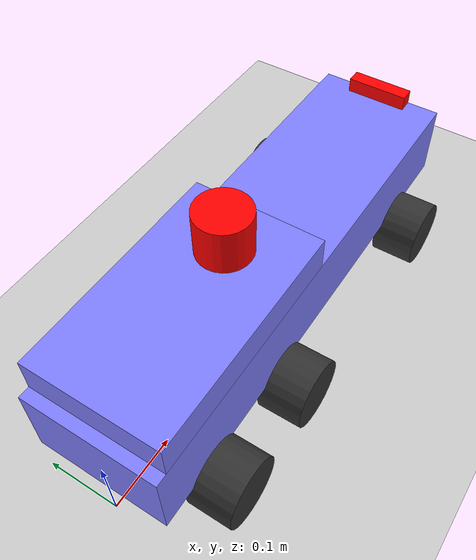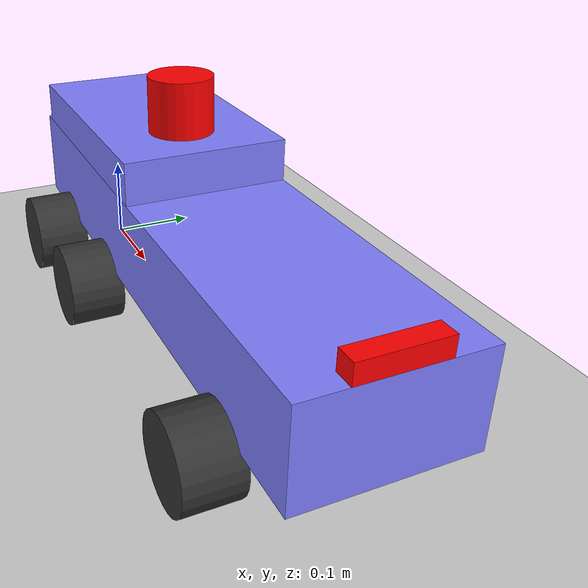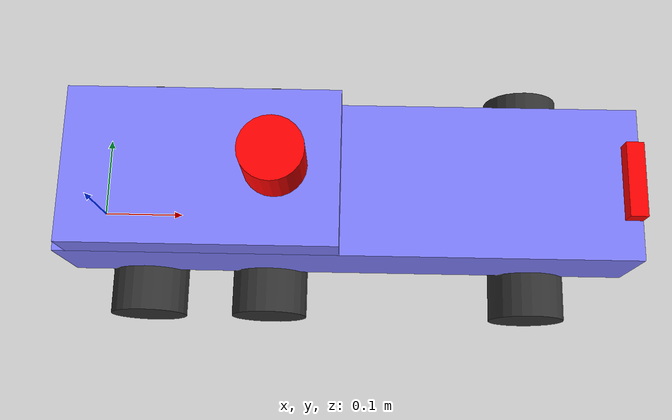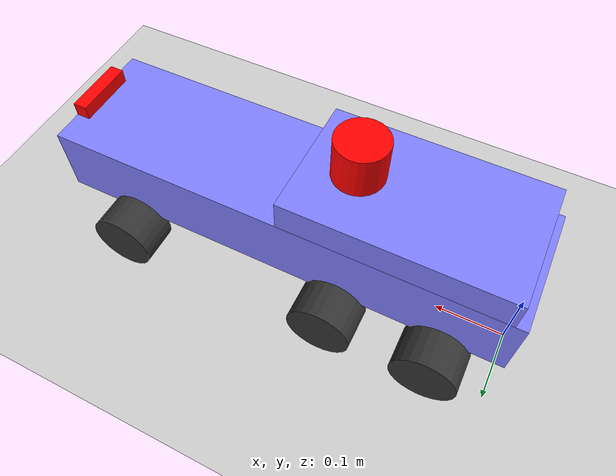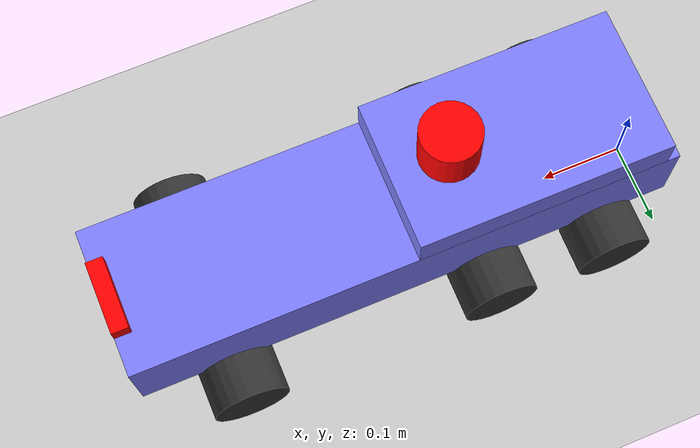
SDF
<sdf version="1.10">
 <world name="ackermann_steering">
  <model name="ground_plane">
   <static>true</static>
   <link name="link">
    <collision name="collision">
     <geometry><plane><normal>0 0 1</normal><size>100 100</size></plane></geometry>
     <surface>
      <friction>
       <ode><mu>50</mu></ode>
       <bullet><friction>1</friction><rolling_friction>0.10000000000000001</rolling_friction></bullet>
      </friction>
     </surface>
    </collision>
    <visual name="visual">
     <geometry><plane><normal>0 0 1</normal><size>100 100</size></plane></geometry>
     <material>
      <ambient>0.800000012 0.800000012 0.800000012 1</ambient>
      <diffuse>0.800000012 0.800000012 0.800000012 1</diffuse>
      <specular>0.800000012 0.800000012 0.800000012 1</specular>
     </material>
    </visual>
    <inertial>
     <mass>1</mass>
     <inertia><ixx>1</ixx><ixy>0</ixy><ixz>0</ixz><iyy>1</iyy><iyz>0</iyz><izz>1</izz></inertia>
    </inertial>
   </link>
  </model>
  <model name="vehicle_blue">
   <pose>0 0 0.13 0 0 0</pose>
   <plugin name="gz::sim::systems::OdometryPublisher" filename="gz-sim-odometry-publisher-system">
    <odom_frame>odom</odom_frame>
    <robot_base_frame>base_footprint</robot_base_frame>
    <odom_topic>/odom</odom_topic>
    <tf_topic>/tf</tf_topic>
    <xyz_offset>0.155 0 0</xyz_offset>
   </plugin>
   <link name="chassis">
    <pose>0.16 0 0 0 0 0</pose>
    <inertial>
     <mass>6000</mass>
     <inertia>
      <ixx>0.126164</ixx>
      <ixy>0</ixy>
      <ixz>0</ixz>
      <iyy>0.41651899999999997</iyy>
      <iyz>0</iyz>
      <izz>0.481014</izz>
     </inertia>
    </inertial>
    <visual name="visual">
     <pose>0.16 0 0 0 0 0</pose>
     <geometry><box><size>0.65000000000000002 0.17499999999999999 0.10000000000000001</size></box></geometry>
     <material><ambient>0.5 0.5 1 1</ambient><diffuse>0.5 0.5 1 1</diffuse><specular>0 0 1 1</specular></material>
    </visual>
    <collision name="collision">
     <pose>0.16 0 0 0 0 0</pose>
     <geometry><box><size>0.65000000000000002 0.17499999999999999 0.10000000000000001</size></box></geometry>
    </collision>
   </link>
   <link name="superstructure_link">
    <pose>0.15999999999999998 -4.4408920985006262e-16 0.072500000000000009 -6.6174449004242214e-24 3.1341007505187209e-25 -1.0369869514467917e-48</pose>
    <inertial>
     <mass>2</mass>
     <inertia>
      <ixx>0.126164</ixx>
      <ixy>0</ixy>
      <ixz>0</ixz>
      <iyy>0.41651899999999997</iyy>
      <iyz>0</iyz>
      <izz>0.481014</izz>
     </inertia>
    </inertial>
    <visual name="visual">
     <geometry><box><size>0.29999999999999999 0.17499999999999999 0.044999999999999998</size></box></geometry>
     <material><ambient>0.5 0.5 1 1</ambient><diffuse>0.5 0.5 1 1</diffuse><specular>0 0 1 1</specular></material>
    </visual>
    <collision name="collision">
     <geometry><box><size>0.29999999999999999 0.17499999999999999 0.044999999999999998</size></box></geometry>
    </collision>
   </link>
   <joint name="superstructure_joint" type="fixed">
    <parent>chassis</parent>
    <child>superstructure_link</child>
    <pose>0 2.9582283945787943e-31 0 0 0 0</pose>
   </joint>
   <link name="rear_left_wheel">
    <pose>0.080000000000000016 0.10999999999999988 -0.072500000000000009 -6.6174308521615763e-24 -5.4487773478196272e-18 1.8028453664010365e-41</pose>
    <inertial>
     <mass>0.20000000000000001</mass>
     <inertia>
      <ixx>0.14583299999999999</ixx>
      <ixy>0</ixy>
      <ixz>0</ixz>
      <iyy>0.14583299999999999</iyy>
      <iyz>0</iyz>
      <izz>0.125</izz>
     </inertia>
    </inertial>
    <visual name="visual">
     <pose>0 0 0 1.5708 0 0</pose>
     <geometry>
      <cylinder><length>0.057500000000000002</length><radius>0.044999999999999998</radius></cylinder>
     </geometry>
     <material>
      <ambient>0.200000003 0.200000003 0.200000003 1</ambient>
      <diffuse>0.200000003 0.200000003 0.200000003 1</diffuse>
      <specular>0.200000003 0.200000003 0.200000003 1</specular>
     </material>
    </visual>
    <collision name="collision">
     <pose>0 0 0 1.5708 0 0</pose>
     <geometry>
      <cylinder><length>0.057500000000000002</length><radius>0.044999999999999998</radius></cylinder>
     </geometry>
     <surface>
      <friction>
       <ode><mu>0.5</mu><mu2>1</mu2><fdir1>0 0 1</fdir1></ode>
       <bullet>
        <friction>0.5</friction>
        <friction2>1</friction2>
        <rolling_friction>0.10000000000000001</rolling_friction>
       </bullet>
      </friction>
     </surface>
    </collision>
   </link>
   <link name="rear_right_wheel">
    <pose>0.080000000000000002 -0.11000000000000054 -0.072500000000000009 -6.6154704950157269e-24 -7.6579661100813126e-16 2.5330524426536642e-39</pose>
    <inertial>
     <mass>0.20000000000000001</mass>
     <inertia>
      <ixx>0.14583299999999999</ixx>
      <ixy>0</ixy>
      <ixz>0</ixz>
      <iyy>0.14583299999999999</iyy>
      <iyz>0</iyz>
      <izz>0.125</izz>
     </inertia>
    </inertial>
    <visual name="visual">
     <pose>0 0 0 1.5708 0 0</pose>
     <geometry>
      <cylinder><length>0.057500000000000002</length><radius>0.044999999999999998</radius></cylinder>
     </geometry>
     <material>
      <ambient>0.200000003 0.200000003 0.200000003 1</ambient>
      <diffuse>0.200000003 0.200000003 0.200000003 1</diffuse>
      <specular>0.200000003 0.200000003 0.200000003 1</specular>
     </material>
    </visual>
    <collision name="collision">
     <pose>0 0 0 1.5708 0 0</pose>
     <geometry>
      <cylinder><length>0.057500000000000002</length><radius>0.044999999999999998</radius></cylinder>
     </geometry>
     <surface>
      <friction>
       <ode><mu>0.5</mu><mu2>1</mu2><fdir1>0 0 1</fdir1></ode>
       <bullet><friction>0.5</friction><friction2>1</friction2><rolling_friction>0.5</rolling_friction></bullet>
      </friction>
     </surface>
    </collision>
   </link>
   <link name="mid_left_wheel">
    <pose>0.22500000000000001 0.10999999999999943 -0.072500000000000009 -6.6173632129241504e-24 -3.1683465601984043e-17 1.0483049986625846e-40</pose>
    <inertial>
     <mass>0.20000000000000001</mass>
     <inertia>
      <ixx>0.14583299999999999</ixx>
      <ixy>0</ixy>
      <ixz>0</ixz>
      <iyy>0.14583299999999999</iyy>
      <iyz>0</iyz>
      <izz>0.125</izz>
     </inertia>
    </inertial>
    <visual name="visual">
     <pose>0 0 0 1.5708 0 0</pose>
     <geometry>
      <cylinder><length>0.057500000000000002</length><radius>0.044999999999999998</radius></cylinder>
     </geometry>
     <material>
      <ambient>0.200000003 0.200000003 0.200000003 1</ambient>
      <diffuse>0.200000003 0.200000003 0.200000003 1</diffuse>
      <specular>0.200000003 0.200000003 0.200000003 1</specular>
     </material>
    </visual>
    <collision name="collision">
     <pose>0 0 0 1.5708 0 0</pose>
     <geometry>
      <cylinder><length>0.057500000000000002</length><radius>0.044999999999999998</radius></cylinder>
     </geometry>
     <surface>
      <friction>
       <ode><mu>0.5</mu><mu2>1</mu2><fdir1>0 0 1</fdir1></ode>
       <bullet>
        <friction>0.5</friction>
        <friction2>1</friction2>
        <rolling_friction>0.10000000000000001</rolling_friction>
       </bullet>
      </friction>
     </surface>
    </collision>
   </link>
   <link name="mid_right_wheel">
    <pose>0.22500000000000001 -0.11000000000000054 -0.072500000000000009 -6.6153947494428686e-24 -7.9517544585783424e-16 -8.0779356694368586e-28</pose>
    <inertial>
     <mass>0.20000000000000001</mass>
     <inertia>
      <ixx>0.14583299999999999</ixx>
      <ixy>0</ixy>
      <ixz>0</ixz>
      <iyy>0.14583299999999999</iyy>
      <iyz>0</iyz>
      <izz>0.125</izz>
     </inertia>
    </inertial>
    <visual name="visual">
     <pose>0 0 0 1.5708 0 0</pose>
     <geometry>
      <cylinder><length>0.057500000000000002</length><radius>0.044999999999999998</radius></cylinder>
     </geometry>
     <material>
      <ambient>0.200000003 0.200000003 0.200000003 1</ambient>
      <diffuse>0.200000003 0.200000003 0.200000003 1</diffuse>
      <specular>0.200000003 0.200000003 0.200000003 1</specular>
     </material>
    </visual>
    <collision name="collision">
     <pose>0 0 0 1.5708 0 0</pose>
     <geometry>
      <cylinder><length>0.057500000000000002</length><radius>0.044999999999999998</radius></cylinder>
     </geometry>
     <surface>
      <friction>
       <ode><mu>0.5</mu><mu2>1</mu2><fdir1>0 0 1</fdir1></ode>
       <bullet><friction>0.5</friction><friction2>1</friction2><rolling_friction>0.5</rolling_friction></bullet>
      </friction>
     </surface>
    </collision>
   </link>
   <link name="front_left_wheel">
    <pose>0.53500000000000003 0.10999999999999943 -0.072500000000000009 -1.7260015163038472e-24 1.1715410634792473e-15 3.4730452995267281e-10</pose>
    <inertial>
     <mass>0.20000000000000001</mass>
     <inertia>
      <ixx>0.14583299999999999</ixx>
      <ixy>0</ixy>
      <ixz>0</ixz>
      <iyy>0.14583299999999999</iyy>
      <iyz>0</iyz>
      <izz>0.125</izz>
     </inertia>
    </inertial>
    <visual name="visual">
     <pose>0 0 0 1.5708 0 0</pose>
     <geometry>
      <cylinder><length>0.057500000000000002</length><radius>0.044999999999999998</radius></cylinder>
     </geometry>
     <material>
      <ambient>0.200000003 0.200000003 0.200000003 1</ambient>
      <diffuse>0.200000003 0.200000003 0.200000003 1</diffuse>
      <specular>0.200000003 0.200000003 0.200000003 1</specular>
     </material>
    </visual>
    <collision name="collision">
     <pose>0 0 0 1.5708 0 0</pose>
     <geometry>
      <cylinder><length>0.057500000000000002</length><radius>0.044999999999999998</radius></cylinder>
     </geometry>
     <surface>
      <friction>
       <ode><mu>0.5</mu><mu2>1</mu2><fdir1>0 0 1</fdir1></ode>
       <bullet><friction>0.5</friction><friction2>1</friction2><rolling_friction>0.5</rolling_friction></bullet>
      </friction>
     </surface>
    </collision>
   </link>
   <link name="front_right_wheel">
    <pose>0.53499999999999992 -0.11000000000000032 -0.072500000000000009 -1.6442902309998368e-24 5.4682230262033162e-16 3.473045343620789e-10</pose>
    <inertial>
     <mass>0.20000000000000001</mass>
     <inertia>
      <ixx>0.14583299999999999</ixx>
      <ixy>0</ixy>
      <ixz>0</ixz>
      <iyy>0.14583299999999999</iyy>
      <iyz>0</iyz>
      <izz>0.125</izz>
     </inertia>
    </inertial>
    <visual name="visual">
     <pose>0 0 0 1.5708 0 0</pose>
     <geometry>
      <cylinder><length>0.057500000000000002</length><radius>0.044999999999999998</radius></cylinder>
     </geometry>
     <material>
      <ambient>0.200000003 0.200000003 0.200000003 1</ambient>
      <diffuse>0.200000003 0.200000003 0.200000003 1</diffuse>
      <specular>0.200000003 0.200000003 0.200000003 1</specular>
     </material>
    </visual>
    <collision name="collision">
     <pose>0 0 0 1.5708 0 0</pose>
     <geometry>
      <cylinder><length>0.057500000000000002</length><radius>0.044999999999999998</radius></cylinder>
     </geometry>
     <surface>
      <friction>
       <ode><mu>0.5</mu><mu2>1</mu2><fdir1>0 0 1</fdir1></ode>
       <bullet>
        <friction>0.5</friction>
        <friction2>1</friction2>
        <rolling_friction>0.10000000000000001</rolling_friction>
       </bullet>
      </friction>
     </surface>
    </collision>
   </link>
   <link name="front_left_wheel_steering_link">
    <pose>0.53500000000000003 0.10999999999999943 -0.072500000000000009 -1.9264217658367837e-24 3.1337176715924709e-25 3.4730452995267281e-10</pose>
    <inertial>
     <mass>0.10000000000000001</mass>
     <inertia>
      <ixx>0.015299999999999999</ixx>
      <iyy>0.025000000000000001</iyy>
      <izz>0.015299999999999999</izz>
      <ixy>0</ixy>
      <ixz>0</ixz>
      <iyz>0</iyz>
     </inertia>
    </inertial>
   </link>
   <link name="front_right_wheel_steering_link">
    <pose>0.53499999999999992 -0.11000000000000032 -0.072500000000000009 -1.7378373249471099e-24 3.1337176712649897e-25 3.4730453436207895e-10</pose>
    <inertial>
     <mass>0.10000000000000001</mass>
     <inertia>
      <ixx>0.015299999999999999</ixx>
      <iyy>0.025000000000000001</iyy>
      <izz>0.015299999999999999</izz>
      <ixy>0</ixy>
      <ixz>0</ixz>
      <iyz>0</iyz>
     </inertia>
    </inertial>
   </link>
   <link name="laser_frame">
    <pose>0.23999999999999994 0 0.12499999999999994 -6.6174449004242214e-24 3.1341007505187209e-25 -1.0369869514467917e-48</pose>
    <visual name="laser_visual">
     <geometry>
      <cylinder><radius>0.035000000000000003</radius><length>0.059999999999999998</length></cylinder>
     </geometry>
     <material><ambient>1 0 0 1</ambient><diffuse>1 0 0 1</diffuse><specular>0 0 0 1</specular></material>
    </visual>
    <sensor name="gpu_lidar" type="gpu_lidar">
     <topic>scan</topic>
     <update_rate>12</update_rate>
     <enable_metrics>false</enable_metrics>
     <gz_frame_id>laser</gz_frame_id>
     <lidar>
      <scan>
       <horizontal>
        <samples>8000</samples>
        <resolution>1</resolution>
        <min_angle>-3.1415000000000002</min_angle>
        <max_angle>3.1415000000000002</max_angle>
       </horizontal>
       <vertical>
        <samples>1</samples>
        <min_angle>0</min_angle>
        <max_angle>0</max_angle>
        <resolution>0.01</resolution>
       </vertical>
      </scan>
      <range><min>0.080000000000000002</min><max>10</max><resolution>0.01</resolution></range>
      <noise><type>none</type><mean>0</mean><stddev>0</stddev></noise>
      <visibility_mask>4294967295</visibility_mask>
     </lidar>
    </sensor>
    <inertial>
     <mass>1</mass>
     <inertia><ixx>1</ixx><ixy>0</ixy><ixz>0</ixz><iyy>1</iyy><iyz>0</iyz><izz>1</izz></inertia>
    </inertial>
   </link>
   <link name="camera_link">
    <pose>0.63499999999999979 -4.4408920985006262e-16 0.059999999999999998 -6.6174449004242214e-24 3.1341007505187209e-25 -1.0369869514467917e-48</pose>
    <visual name="camera_visual">
     <geometry><box><size>0.02 0.085000000000000006 0.02</size></box></geometry>
     <material><ambient>1 0 0 1</ambient><diffuse>1 0 0 1</diffuse><specular>0 0 0 1</specular></material>
    </visual>
    <sensor name="camera" type="camera">
     <gz_frame_id>camera</gz_frame_id>
     <topic>camera/image_raw</topic>
     <update_rate>24</update_rate>
     <enable_metrics>false</enable_metrics>
     <camera name="__default__">
      <horizontal_fov>1.089</horizontal_fov>
      <image><width>720</width><height>720</height><format>RGB_INT8</format><anti_aliasing>4</anti_aliasing></image>
      <camera_info_topic>__default__</camera_info_topic>
      <triggered>false</triggered>
      <clip><near>0.050000000000000003</near><far>8</far></clip>
      <save enabled="false"><path>__default__</path></save>
      <visibility_mask>4294967295</visibility_mask>
      <noise><type>none</type><mean>0</mean><stddev>0</stddev></noise>
      <distortion><k1>0</k1><k2>0</k2><k3>0</k3><p1>0</p1><p2>0</p2><center>0.5 0.5</center></distortion>
      <lens>
       <type>stereographic</type>
       <scale_to_hfov>true</scale_to_hfov>
       <cutoff_angle>1.5707963267948966</cutoff_angle>
       <env_texture_size>256</env_texture_size>
      </lens>
     </camera>
    </sensor>
    <inertial>
     <mass>1</mass>
     <inertia><ixx>1</ixx><ixy>0</ixy><ixz>0</ixz><iyy>1</iyy><iyz>0</iyz><izz>1</izz></inertia>
    </inertial>
   </link>
   <link name="imu_link">
    <pose>0.15999999999999995 -4.4408920985006262e-16 0 -6.6174449004242214e-24 3.1341007505187209e-25 -1.0369869514467917e-48</pose>
    <visual name="imu_visual">
     <geometry><box><size>0.044999999999999998 0.059999999999999998 0.01</size></box></geometry>
     <material><ambient>1 0 0 1</ambient><diffuse>1 0 0 1</diffuse><specular>0 0 0 1</specular></material>
    </visual>
    <sensor name="imu_sensor" type="imu">
     <topic>imu</topic>
     <update_rate>30</update_rate>
     <enable_metrics>false</enable_metrics>
     <gz_frame_id>imu</gz_frame_id>
     <imu>
      <orientation_reference_frame>
       <localization>CUSTOM</localization>
       <custom_rpy>0 0 0</custom_rpy>
       <grav_dir_x>1 0 0</grav_dir_x>
      </orientation_reference_frame>
      <angular_velocity>
       <x>
        <noise type="none">
         <mean>0</mean>
         <stddev>0</stddev>
         <bias_mean>0</bias_mean>
         <bias_stddev>0</bias_stddev>
         <dynamic_bias_stddev>0</dynamic_bias_stddev>
         <dynamic_bias_correlation_time>0</dynamic_bias_correlation_time>
         <precision>0</precision>
        </noise>
       </x>
       <y>
        <noise type="none">
         <mean>0</mean>
         <stddev>0</stddev>
         <bias_mean>0</bias_mean>
         <bias_stddev>0</bias_stddev>
         <dynamic_bias_stddev>0</dynamic_bias_stddev>
         <dynamic_bias_correlation_time>0</dynamic_bias_correlation_time>
         <precision>0</precision>
        </noise>
       </y>
       <z>
        <noise type="none">
         <mean>0</mean>
         <stddev>0</stddev>
         <bias_mean>0</bias_mean>
         <bias_stddev>0</bias_stddev>
         <dynamic_bias_stddev>0</dynamic_bias_stddev>
         <dynamic_bias_correlation_time>0</dynamic_bias_correlation_time>
         <precision>0</precision>
        </noise>
       </z>
      </angular_velocity>
      <linear_acceleration>
       <x>
        <noise type="none">
         <mean>0</mean>
         <stddev>0</stddev>
         <bias_mean>0</bias_mean>
         <bias_stddev>0</bias_stddev>
         <dynamic_bias_stddev>0</dynamic_bias_stddev>
         <dynamic_bias_correlation_time>0</dynamic_bias_correlation_time>
         <precision>0</precision>
        </noise>
       </x>
       <y>
        <noise type="none">
         <mean>0</mean>
         <stddev>0</stddev>
         <bias_mean>0</bias_mean>
         <bias_stddev>0</bias_stddev>
         <dynamic_bias_stddev>0</dynamic_bias_stddev>
         <dynamic_bias_correlation_time>0</dynamic_bias_correlation_time>
         <precision>0</precision>
        </noise>
       </y>
       <z>
        <noise type="none">
         <mean>0</mean>
         <stddev>0</stddev>
         <bias_mean>0</bias_mean>
         <bias_stddev>0</bias_stddev>
         <dynamic_bias_stddev>0</dynamic_bias_stddev>
         <dynamic_bias_correlation_time>0</dynamic_bias_correlation_time>
         <precision>0</precision>
        </noise>
       </z>
      </linear_acceleration>
      <enable_orientation>true</enable_orientation>
     </imu>
    </sensor>
    <inertial>
     <mass>1</mass>
     <inertia><ixx>1</ixx><ixy>0</ixy><ixz>0</ixz><iyy>1</iyy><iyz>0</iyz><izz>1</izz></inertia>
    </inertial>
   </link>
   <joint name="laser_joint" type="fixed"><parent>superstructure_link</parent><child>laser_frame</child></joint>
   <joint name="camera_joint" type="fixed"><parent>chassis</parent><child>camera_link</child></joint>
   <joint name="imu_joint" type="fixed"><parent>chassis</parent><child>imu_link</child></joint>
   <joint name="front_left_wheel_steering_joint" type="revolute">
    <child>front_left_wheel_steering_link</child>
    <parent>chassis</parent>
    <axis>
     <xyz>-1.7607188878690069e-41 0 1</xyz>
     <limit>
      <lower>-0.59999999999999998</lower>
      <upper>0.59999999999999998</upper>
      <effort>25</effort>
      <velocity>1</velocity>
      <stiffness>100000000</stiffness>
      <dissipation>1</dissipation>
     </limit>
     <dynamics>
      <spring_reference>0</spring_reference>
      <spring_stiffness>0</spring_stiffness>
      <damping>0</damping>
      <friction>0</friction>
     </dynamics>
    </axis>
    <pose>-3.3306690738754696e-16 0 0 0 -5.8690629595633562e-42 0</pose>
   </joint>
   <joint name="front_right_wheel_steering_joint" type="revolute">
    <parent>chassis</parent>
    <child>front_right_wheel_steering_link</child>
    <axis>
     <xyz>2.1998314262046012e-41 0 1</xyz>
     <limit>
      <lower>-0.59999999999999998</lower>
      <upper>0.59999999999999998</upper>
      <effort>25</effort>
      <velocity>1</velocity>
      <stiffness>100000000</stiffness>
      <dissipation>1</dissipation>
     </limit>
     <dynamics>
      <spring_reference>0</spring_reference>
      <spring_stiffness>0</spring_stiffness>
      <damping>0</damping>
      <friction>0</friction>
     </dynamics>
    </axis>
    <pose>3.3306690738754696e-16 0 0 0 7.332771420682004e-42 0</pose>
   </joint>
   <joint name="front_left_wheel_joint" type="revolute">
    <parent>front_left_wheel_steering_link</parent>
    <child>front_left_wheel</child>
    <axis>
     <xyz>0 1 0</xyz>
     <limit>
      <lower>-1.7976900000000001e+308</lower>
      <upper>1.7976900000000001e+308</upper>
      <effort>inf</effort>
      <velocity>inf</velocity>
      <stiffness>100000000</stiffness>
      <dissipation>1</dissipation>
     </limit>
     <dynamics>
      <spring_reference>0</spring_reference>
      <spring_stiffness>0</spring_stiffness>
      <damping>0</damping>
      <friction>0</friction>
     </dynamics>
    </axis>
    <pose>-3.3306690738754696e-16 0 4.163336342344337e-17 0 3.3505202127990094e-34 0</pose>
   </joint>
   <joint name="front_right_wheel_joint" type="revolute">
    <parent>front_right_wheel_steering_link</parent>
    <child>front_right_wheel</child>
    <axis>
     <xyz>0 1 0</xyz>
     <limit>
      <lower>-1.7976900000000001e+308</lower>
      <upper>1.7976900000000001e+308</upper>
      <effort>inf</effort>
      <velocity>inf</velocity>
      <stiffness>100000000</stiffness>
      <dissipation>1</dissipation>
     </limit>
     <dynamics>
      <spring_reference>0</spring_reference>
      <spring_stiffness>0</spring_stiffness>
      <damping>0</damping>
      <friction>0</friction>
     </dynamics>
    </axis>
    <pose>0 0 4.163336342344337e-17 0 3.0202421314646639e-34 0</pose>
   </joint>
   <joint name="rear_left_wheel_joint" type="revolute">
    <parent>chassis</parent>
    <child>rear_left_wheel</child>
    <axis>
     <xyz>0 1 0</xyz>
     <limit>
      <lower>-1.7976900000000001e+308</lower>
      <upper>1.7976900000000001e+308</upper>
      <effort>inf</effort>
      <velocity>inf</velocity>
      <stiffness>100000000</stiffness>
      <dissipation>1</dissipation>
     </limit>
     <dynamics>
      <spring_reference>0</spring_reference>
      <spring_stiffness>0</spring_stiffness>
      <damping>0</damping>
      <friction>0</friction>
     </dynamics>
    </axis>
   </joint>
   <joint name="rear_right_wheel_joint" type="revolute">
    <parent>chassis</parent>
    <child>rear_right_wheel</child>
    <axis>
     <xyz>0 1 0</xyz>
     <limit>
      <lower>-1.7976900000000001e+308</lower>
      <upper>1.7976900000000001e+308</upper>
      <effort>inf</effort>
      <velocity>inf</velocity>
      <stiffness>100000000</stiffness>
      <dissipation>1</dissipation>
     </limit>
     <dynamics>
      <spring_reference>0</spring_reference>
      <spring_stiffness>0</spring_stiffness>
      <damping>0</damping>
      <friction>0</friction>
     </dynamics>
    </axis>
   </joint>
   <joint name="mid_left_wheel_joint" type="revolute">
    <parent>chassis</parent>
    <child>mid_left_wheel</child>
    <axis>
     <xyz>0 1 0</xyz>
     <limit>
      <lower>-1.7976900000000001e+308</lower>
      <upper>1.7976900000000001e+308</upper>
      <effort>inf</effort>
      <velocity>inf</velocity>
      <stiffness>100000000</stiffness>
      <dissipation>1</dissipation>
     </limit>
     <dynamics>
      <spring_reference>0</spring_reference>
      <spring_stiffness>0</spring_stiffness>
      <damping>0</damping>
      <friction>0</friction>
     </dynamics>
    </axis>
    <pose>0 0 4.163336342344337e-17 0 0 0</pose>
   </joint>
   <joint name="mid_right_wheel_joint" type="revolute">
    <parent>chassis</parent>
    <child>mid_right_wheel</child>
    <axis>
     <xyz>0 1 0</xyz>
     <limit>
      <lower>-1.7976900000000001e+308</lower>
      <upper>1.7976900000000001e+308</upper>
      <effort>inf</effort>
      <velocity>inf</velocity>
      <stiffness>100000000</stiffness>
      <dissipation>1</dissipation>
     </limit>
     <dynamics>
      <spring_reference>0</spring_reference>
      <spring_stiffness>0</spring_stiffness>
      <damping>0</damping>
      <friction>0</friction>
     </dynamics>
    </axis>
    <pose>0 0 4.163336342344337e-17 0 -2.6719366607051929e-51 0</pose>
   </joint>
   <plugin name="gz::sim::systems::AckermannSteering" filename="gz-sim-ackermann-steering-system">
    <left_joint>front_left_wheel_joint</left_joint>
    <left_joint>rear_left_wheel_joint</left_joint>
    <left_joint>mid_left_wheel_joint</left_joint>
    <right_joint>front_right_wheel_joint</right_joint>
    <right_joint>rear_right_wheel_joint</right_joint>
    <right_joint>mid_right_wheel_joint</right_joint>
    <left_steering_joint>front_left_wheel_steering_joint</left_steering_joint>
    <right_steering_joint>front_right_wheel_steering_joint</right_steering_joint>
    <kingpin_width>0.22</kingpin_width>
    <steering_limit>0.7854</steering_limit>
    <wheel_base>0.4</wheel_base>
    <wheel_separation>0.22</wheel_separation>
    <wheel_radius>0.0575</wheel_radius>
    <min_velocity>-5</min_velocity>
    <max_velocity>5</max_velocity>
    <min_acceleration>-7</min_acceleration>
    <max_acceleration>7</max_acceleration>
    <topic>cmd_vel</topic>
   </plugin>
   <static>false</static>
  </model>
 </world>
</sdf>
